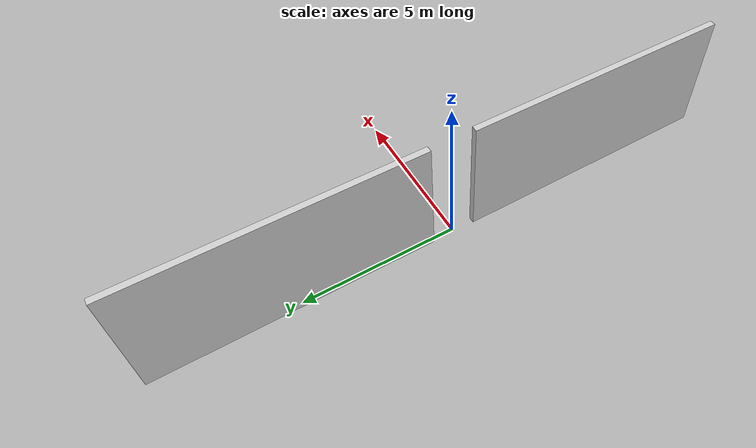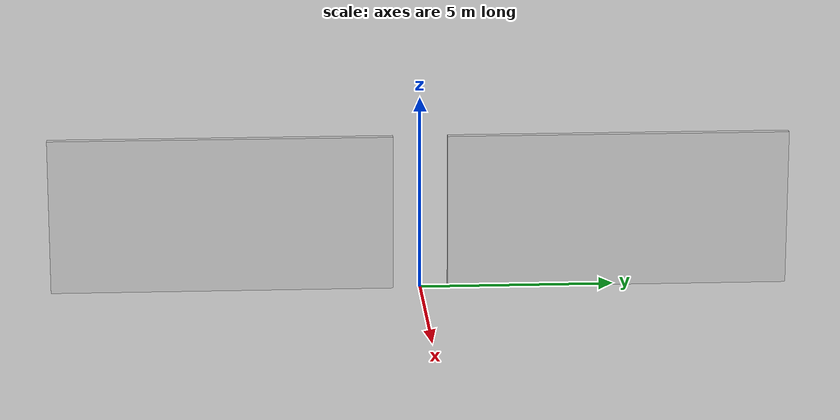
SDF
<?xml version="1.0" ?>
<sdf version="1.6">
  <model name="study_track_gate_block">
    <static>true</static>

    <link name="gate_l">
      <pose>0 -5.1 2 0 0 0</pose>
      <collision name='collision'>
        <geometry>
          <box>
            <size>0.2 8.8 4</size>
          </box>
        </geometry>
        <max_contacts>10</max_contacts>
      </collision>
      <visual name='visual'>
        <cast_shadows>1</cast_shadows>
        <geometry>
          <box>
            <size>0.2 8.8 4</size>
          </box>
        </geometry>
        <material>
          <ambient>0.7 0.7 0.7 1</ambient>
          <diffuse>0.8 0.8 0.8 1</diffuse>
          <specular>0.1 0.1 0.1 1</specular>
          <emissive>0 0 0 0</emissive>
        </material>
      </visual>
    </link>

    <link name="gate_r">
      <pose>0 5.1 2 0 0 0</pose>
      <collision name='collision'>
        <geometry>
          <box>
            <size>0.2 8.8 4</size>
          </box>
        </geometry>
        <max_contacts>10</max_contacts>
      </collision>
      <visual name='visual'>
        <cast_shadows>1</cast_shadows>
        <geometry>
          <box>
            <size>0.2 8.8 4</size>
          </box>
        </geometry>
        <material>
          <ambient>0.7 0.7 0.7 1</ambient>
          <diffuse>0.8 0.8 0.8 1</diffuse>
          <specular>0.1 0.1 0.1 1</specular>
          <emissive>0 0 0 0</emissive>
        </material>
      </visual>
    </link>

  </model>
</sdf>
